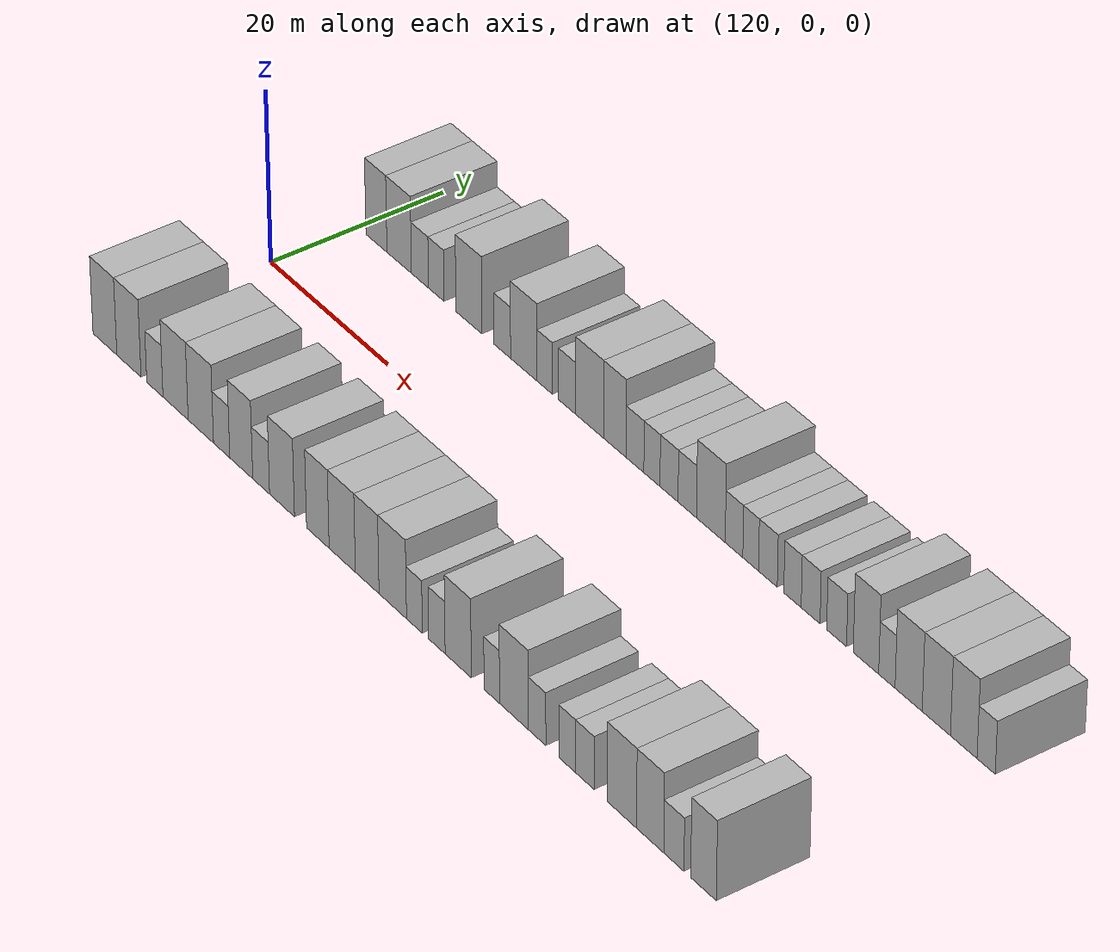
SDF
<sdf version="1.6">
 <world name="default">
  <model name="building_28">
   <static>1</static>
   <pose>123.1927 15.0000 0 0.000000 0.000000 1.570796</pose>
   <link name="link">
    <pose>0 0 4.50 0 0 0</pose>
    <collision name="collision"><geometry><box><size>10.0000 3.6054 9.0000</size></box></geometry></collision>
    <visual name="visual">
     <cast_shadows>0</cast_shadows>
     <geometry><box><size>10.0000 3.6054 9.0000</size></box></geometry>
     <material>
      <script>
       <uri>model://HANNAS_wall/materials/scripts</uri>
       <uri>model://HANNAS_wall/materials/textures</uri>
       <name>vrc/HANNAS_wall</name>
      </script>
     </material>
    </visual>
   </link>
  </model>
  <model name="building_29">
   <static>1</static>
   <pose>127.0830 15.0000 0 0.000000 0.000000 1.570796</pose>
   <link name="link">
    <pose>0 0 4.50 0 0 0</pose>
    <collision name="collision"><geometry><box><size>10.0000 4.1753 9.0000</size></box></geometry></collision>
    <visual name="visual">
     <cast_shadows>0</cast_shadows>
     <geometry><box><size>10.0000 4.1753 9.0000</size></box></geometry>
     <material>
      <script>
       <uri>model://HANNAS_wall/materials/scripts</uri>
       <uri>model://HANNAS_wall/materials/textures</uri>
       <name>vrc/HANNAS_wall</name>
      </script>
     </material>
    </visual>
   </link>
  </model>
  <model name="building_30">
   <static>1</static>
   <pose>130.6172 15.0000 0 0.000000 0.000000 1.570796</pose>
   <link name="link">
    <pose>0 0 3.00 0 0 0</pose>
    <collision name="collision"><geometry><box><size>10.0000 2.8932 6.0000</size></box></geometry></collision>
    <visual name="visual">
     <cast_shadows>0</cast_shadows>
     <geometry><box><size>10.0000 2.8932 6.0000</size></box></geometry>
     <material>
      <script>
       <uri>model://HANNAS_wall/materials/scripts</uri>
       <uri>model://HANNAS_wall/materials/textures</uri>
       <name>vrc/HANNAS_wall</name>
      </script>
     </material>
    </visual>
   </link>
  </model>
  <model name="building_31">
   <static>1</static>
   <pose>133.3781 15.0000 0 0.000000 0.000000 1.570796</pose>
   <link name="link">
    <pose>0 0 3.00 0 0 0</pose>
    <collision name="collision"><geometry><box><size>10.0000 2.6285 6.0000</size></box></geometry></collision>
    <visual name="visual">
     <cast_shadows>0</cast_shadows>
     <geometry><box><size>10.0000 2.6285 6.0000</size></box></geometry>
     <material>
      <script>
       <uri>model://HANNAS_wall/materials/scripts</uri>
       <uri>model://HANNAS_wall/materials/textures</uri>
       <name>vrc/HANNAS_wall</name>
      </script>
     </material>
    </visual>
   </link>
  </model>
  <model name="building_32">
   <static>1</static>
   <pose>138.8617 15.0000 0 0.000000 0.000000 1.570796</pose>
   <link name="link">
    <pose>0 0 4.50 0 0 0</pose>
    <collision name="collision"><geometry><box><size>10.0000 4.3386 9.0000</size></box></geometry></collision>
    <visual name="visual">
     <cast_shadows>0</cast_shadows>
     <geometry><box><size>10.0000 4.3386 9.0000</size></box></geometry>
     <material>
      <script>
       <uri>model://HANNAS_wall/materials/scripts</uri>
       <uri>model://HANNAS_wall/materials/textures</uri>
       <name>vrc/HANNAS_wall</name>
      </script>
     </material>
    </visual>
   </link>
  </model>
  <model name="building_33">
   <static>1</static>
   <pose>144.4029 15.0000 0 0.000000 0.000000 1.570796</pose>
   <link name="link">
    <pose>0 0 3.00 0 0 0</pose>
    <collision name="collision"><geometry><box><size>10.0000 2.7437 6.0000</size></box></geometry></collision>
    <visual name="visual">
     <cast_shadows>0</cast_shadows>
     <geometry><box><size>10.0000 2.7437 6.0000</size></box></geometry>
     <material>
      <script>
       <uri>model://HANNAS_wall/materials/scripts</uri>
       <uri>model://HANNAS_wall/materials/textures</uri>
       <name>vrc/HANNAS_wall</name>
      </script>
     </material>
    </visual>
   </link>
  </model>
  <model name="building_34">
   <static>1</static>
   <pose>147.9562 15.0000 0 0.000000 0.000000 1.570796</pose>
   <link name="link">
    <pose>0 0 4.50 0 0 0</pose>
    <collision name="collision"><geometry><box><size>10.0000 4.3629 9.0000</size></box></geometry></collision>
    <visual name="visual">
     <cast_shadows>0</cast_shadows>
     <geometry><box><size>10.0000 4.3629 9.0000</size></box></geometry>
     <material>
      <script>
       <uri>model://HANNAS_wall/materials/scripts</uri>
       <uri>model://HANNAS_wall/materials/textures</uri>
       <name>vrc/HANNAS_wall</name>
      </script>
     </material>
    </visual>
   </link>
  </model>
  <model name="building_35">
   <static>1</static>
   <pose>151.3836 15.0000 0 0.000000 0.000000 1.570796</pose>
   <link name="link">
    <pose>0 0 3.00 0 0 0</pose>
    <collision name="collision"><geometry><box><size>10.0000 2.4920 6.0000</size></box></geometry></collision>
    <visual name="visual">
     <cast_shadows>0</cast_shadows>
     <geometry><box><size>10.0000 2.4920 6.0000</size></box></geometry>
     <material>
      <script>
       <uri>model://HANNAS_wall/materials/scripts</uri>
       <uri>model://HANNAS_wall/materials/textures</uri>
       <name>vrc/HANNAS_wall</name>
      </script>
     </material>
    </visual>
   </link>
  </model>
  <model name="building_36">
   <static>1</static>
   <pose>155.0240 15.0000 0 0.000000 0.000000 1.570796</pose>
   <link name="link">
    <pose>0 0 3.00 0 0 0</pose>
    <collision name="collision"><geometry><box><size>10.0000 2.7888 6.0000</size></box></geometry></collision>
    <visual name="visual">
     <cast_shadows>0</cast_shadows>
     <geometry><box><size>10.0000 2.7888 6.0000</size></box></geometry>
     <material>
      <script>
       <uri>model://HANNAS_wall/materials/scripts</uri>
       <uri>model://HANNAS_wall/materials/textures</uri>
       <name>vrc/HANNAS_wall</name>
      </script>
     </material>
    </visual>
   </link>
  </model>
  <model name="building_37">
   <static>1</static>
   <pose>158.6517 15.0000 0 0.000000 0.000000 1.570796</pose>
   <link name="link">
    <pose>0 0 4.50 0 0 0</pose>
    <collision name="collision"><geometry><box><size>10.0000 4.4665 9.0000</size></box></geometry></collision>
    <visual name="visual">
     <cast_shadows>0</cast_shadows>
     <geometry><box><size>10.0000 4.4665 9.0000</size></box></geometry>
     <material>
      <script>
       <uri>model://HANNAS_wall/materials/scripts</uri>
       <uri>model://HANNAS_wall/materials/textures</uri>
       <name>vrc/HANNAS_wall</name>
      </script>
     </material>
    </visual>
   </link>
  </model>
  <model name="building_38">
   <static>1</static>
   <pose>162.6968 15.0000 0 0.000000 0.000000 1.570796</pose>
   <link name="link">
    <pose>0 0 4.50 0 0 0</pose>
    <collision name="collision"><geometry><box><size>10.0000 3.6238 9.0000</size></box></geometry></collision>
    <visual name="visual">
     <cast_shadows>0</cast_shadows>
     <geometry><box><size>10.0000 3.6238 9.0000</size></box></geometry>
     <material>
      <script>
       <uri>model://HANNAS_wall/materials/scripts</uri>
       <uri>model://HANNAS_wall/materials/textures</uri>
       <name>vrc/HANNAS_wall</name>
      </script>
     </material>
    </visual>
   </link>
  </model>
  <model name="building_39">
   <static>1</static>
   <pose>165.9192 15.0000 0 0.000000 0.000000 1.570796</pose>
   <link name="link">
    <pose>0 0 3.00 0 0 0</pose>
    <collision name="collision"><geometry><box><size>10.0000 2.8211 6.0000</size></box></geometry></collision>
    <visual name="visual">
     <cast_shadows>0</cast_shadows>
     <geometry><box><size>10.0000 2.8211 6.0000</size></box></geometry>
     <material>
      <script>
       <uri>model://HANNAS_wall/materials/scripts</uri>
       <uri>model://HANNAS_wall/materials/textures</uri>
       <name>vrc/HANNAS_wall</name>
      </script>
     </material>
    </visual>
   </link>
  </model>
  <model name="building_40">
   <static>1</static>
   <pose>168.6110 15.0000 0 0.000000 0.000000 1.570796</pose>
   <link name="link">
    <pose>0 0 3.00 0 0 0</pose>
    <collision name="collision"><geometry><box><size>10.0000 2.5624 6.0000</size></box></geometry></collision>
    <visual name="visual">
     <cast_shadows>0</cast_shadows>
     <geometry><box><size>10.0000 2.5624 6.0000</size></box></geometry>
     <material>
      <script>
       <uri>model://HANNAS_wall/materials/scripts</uri>
       <uri>model://HANNAS_wall/materials/textures</uri>
       <name>vrc/HANNAS_wall</name>
      </script>
     </material>
    </visual>
   </link>
  </model>
  <model name="building_41">
   <static>1</static>
   <pose>171.3134 15.0000 0 0.000000 0.000000 1.570796</pose>
   <link name="link">
    <pose>0 0 3.00 0 0 0</pose>
    <collision name="collision"><geometry><box><size>10.0000 2.8425 6.0000</size></box></geometry></collision>
    <visual name="visual">
     <cast_shadows>0</cast_shadows>
     <geometry><box><size>10.0000 2.8425 6.0000</size></box></geometry>
     <material>
      <script>
       <uri>model://HANNAS_wall/materials/scripts</uri>
       <uri>model://HANNAS_wall/materials/textures</uri>
       <name>vrc/HANNAS_wall</name>
      </script>
     </material>
    </visual>
   </link>
  </model>
  <model name="building_42">
   <static>1</static>
   <pose>174.1806 15.0000 0 0.000000 0.000000 1.570796</pose>
   <link name="link">
    <pose>0 0 3.00 0 0 0</pose>
    <collision name="collision"><geometry><box><size>10.0000 2.8918 6.0000</size></box></geometry></collision>
    <visual name="visual">
     <cast_shadows>0</cast_shadows>
     <geometry><box><size>10.0000 2.8918 6.0000</size></box></geometry>
     <material>
      <script>
       <uri>model://HANNAS_wall/materials/scripts</uri>
       <uri>model://HANNAS_wall/materials/textures</uri>
       <name>vrc/HANNAS_wall</name>
      </script>
     </material>
    </visual>
   </link>
  </model>
  <model name="building_43">
   <static>1</static>
   <pose>177.8587 15.0000 0 0.000000 0.000000 1.570796</pose>
   <link name="link">
    <pose>0 0 4.50 0 0 0</pose>
    <collision name="collision"><geometry><box><size>10.0000 4.4644 9.0000</size></box></geometry></collision>
    <visual name="visual">
     <cast_shadows>0</cast_shadows>
     <geometry><box><size>10.0000 4.4644 9.0000</size></box></geometry>
     <material>
      <script>
       <uri>model://HANNAS_wall/materials/scripts</uri>
       <uri>model://HANNAS_wall/materials/textures</uri>
       <name>vrc/HANNAS_wall</name>
      </script>
     </material>
    </visual>
   </link>
  </model>
  <model name="building_44">
   <static>1</static>
   <pose>181.4485 15.0000 0 0.000000 0.000000 1.570796</pose>
   <link name="link">
    <pose>0 0 3.00 0 0 0</pose>
    <collision name="collision"><geometry><box><size>10.0000 2.7152 6.0000</size></box></geometry></collision>
    <visual name="visual">
     <cast_shadows>0</cast_shadows>
     <geometry><box><size>10.0000 2.7152 6.0000</size></box></geometry>
     <material>
      <script>
       <uri>model://HANNAS_wall/materials/scripts</uri>
       <uri>model://HANNAS_wall/materials/textures</uri>
       <name>vrc/HANNAS_wall</name>
      </script>
     </material>
    </visual>
   </link>
  </model>
  <model name="building_45">
   <static>1</static>
   <pose>184.0129 15.0000 0 0.000000 0.000000 1.570796</pose>
   <link name="link">
    <pose>0 0 3.00 0 0 0</pose>
    <collision name="collision"><geometry><box><size>10.0000 2.4135 6.0000</size></box></geometry></collision>
    <visual name="visual">
     <cast_shadows>0</cast_shadows>
     <geometry><box><size>10.0000 2.4135 6.0000</size></box></geometry>
     <material>
      <script>
       <uri>model://HANNAS_wall/materials/scripts</uri>
       <uri>model://HANNAS_wall/materials/textures</uri>
       <name>vrc/HANNAS_wall</name>
      </script>
     </material>
    </visual>
   </link>
  </model>
  <model name="building_46">
   <static>1</static>
   <pose>186.6566 15.0000 0 0.000000 0.000000 1.570796</pose>
   <link name="link">
    <pose>0 0 3.00 0 0 0</pose>
    <collision name="collision"><geometry><box><size>10.0000 2.8739 6.0000</size></box></geometry></collision>
    <visual name="visual">
     <cast_shadows>0</cast_shadows>
     <geometry><box><size>10.0000 2.8739 6.0000</size></box></geometry>
     <material>
      <script>
       <uri>model://HANNAS_wall/materials/scripts</uri>
       <uri>model://HANNAS_wall/materials/textures</uri>
       <name>vrc/HANNAS_wall</name>
      </script>
     </material>
    </visual>
   </link>
  </model>
  <model name="building_47">
   <static>1</static>
   <pose>190.4143 15.0000 0 0.000000 0.000000 1.570796</pose>
   <link name="link">
    <pose>0 0 3.00 0 0 0</pose>
    <collision name="collision"><geometry><box><size>10.0000 2.6414 6.0000</size></box></geometry></collision>
    <visual name="visual">
     <cast_shadows>0</cast_shadows>
     <geometry><box><size>10.0000 2.6414 6.0000</size></box></geometry>
     <material>
      <script>
       <uri>model://HANNAS_wall/materials/scripts</uri>
       <uri>model://HANNAS_wall/materials/textures</uri>
       <name>vrc/HANNAS_wall</name>
      </script>
     </material>
    </visual>
   </link>
  </model>
  <model name="building_48">
   <static>1</static>
   <pose>193.1601 15.0000 0 0.000000 0.000000 1.570796</pose>
   <link name="link">
    <pose>0 0 3.00 0 0 0</pose>
    <collision name="collision"><geometry><box><size>10.0000 2.8502 6.0000</size></box></geometry></collision>
    <visual name="visual">
     <cast_shadows>0</cast_shadows>
     <geometry><box><size>10.0000 2.8502 6.0000</size></box></geometry>
     <material>
      <script>
       <uri>model://HANNAS_wall/materials/scripts</uri>
       <uri>model://HANNAS_wall/materials/textures</uri>
       <name>vrc/HANNAS_wall</name>
      </script>
     </material>
    </visual>
   </link>
  </model>
  <model name="building_49">
   <static>1</static>
   <pose>197.0775 15.0000 0 0.000000 0.000000 1.570796</pose>
   <link name="link">
    <pose>0 0 3.00 0 0 0</pose>
    <collision name="collision"><geometry><box><size>10.0000 2.9847 6.0000</size></box></geometry></collision>
    <visual name="visual">
     <cast_shadows>0</cast_shadows>
     <geometry><box><size>10.0000 2.9847 6.0000</size></box></geometry>
     <material>
      <script>
       <uri>model://HANNAS_wall/materials/scripts</uri>
       <uri>model://HANNAS_wall/materials/textures</uri>
       <name>vrc/HANNAS_wall</name>
      </script>
     </material>
    </visual>
   </link>
  </model>
  <model name="building_50">
   <static>1</static>
   <pose>201.4639 15.0000 0 0.000000 0.000000 1.570796</pose>
   <link name="link">
    <pose>0 0 4.50 0 0 0</pose>
    <collision name="collision"><geometry><box><size>10.0000 3.7880 9.0000</size></box></geometry></collision>
    <visual name="visual">
     <cast_shadows>0</cast_shadows>
     <geometry><box><size>10.0000 3.7880 9.0000</size></box></geometry>
     <material>
      <script>
       <uri>model://HANNAS_wall/materials/scripts</uri>
       <uri>model://HANNAS_wall/materials/textures</uri>
       <name>vrc/HANNAS_wall</name>
      </script>
     </material>
    </visual>
   </link>
  </model>
  <model name="building_51">
   <static>1</static>
   <pose>204.5732 15.0000 0 0.000000 0.000000 1.570796</pose>
   <link name="link">
    <pose>0 0 3.00 0 0 0</pose>
    <collision name="collision"><geometry><box><size>10.0000 2.4307 6.0000</size></box></geometry></collision>
    <visual name="visual">
     <cast_shadows>0</cast_shadows>
     <geometry><box><size>10.0000 2.4307 6.0000</size></box></geometry>
     <material>
      <script>
       <uri>model://HANNAS_wall/materials/scripts</uri>
       <uri>model://HANNAS_wall/materials/textures</uri>
       <name>vrc/HANNAS_wall</name>
      </script>
     </material>
    </visual>
   </link>
  </model>
  <model name="building_52">
   <static>1</static>
   <pose>207.7834 15.0000 0 0.000000 0.000000 1.570796</pose>
   <link name="link">
    <pose>0 0 4.50 0 0 0</pose>
    <collision name="collision"><geometry><box><size>10.0000 3.9896 9.0000</size></box></geometry></collision>
    <visual name="visual">
     <cast_shadows>0</cast_shadows>
     <geometry><box><size>10.0000 3.9896 9.0000</size></box></geometry>
     <material>
      <script>
       <uri>model://HANNAS_wall/materials/scripts</uri>
       <uri>model://HANNAS_wall/materials/textures</uri>
       <name>vrc/HANNAS_wall</name>
      </script>
     </material>
    </visual>
   </link>
  </model>
  <model name="building_53">
   <static>1</static>
   <pose>211.8404 15.0000 0 0.000000 0.000000 1.570796</pose>
   <link name="link">
    <pose>0 0 4.50 0 0 0</pose>
    <collision name="collision"><geometry><box><size>10.0000 4.1246 9.0000</size></box></geometry></collision>
    <visual name="visual">
     <cast_shadows>0</cast_shadows>
     <geometry><box><size>10.0000 4.1246 9.0000</size></box></geometry>
     <material>
      <script>
       <uri>model://HANNAS_wall/materials/scripts</uri>
       <uri>model://HANNAS_wall/materials/textures</uri>
       <name>vrc/HANNAS_wall</name>
      </script>
     </material>
    </visual>
   </link>
  </model>
  <model name="building_54">
   <static>1</static>
   <pose>215.8336 15.0000 0 0.000000 0.000000 1.570796</pose>
   <link name="link">
    <pose>0 0 4.50 0 0 0</pose>
    <collision name="collision"><geometry><box><size>10.0000 3.8618 9.0000</size></box></geometry></collision>
    <visual name="visual">
     <cast_shadows>0</cast_shadows>
     <geometry><box><size>10.0000 3.8618 9.0000</size></box></geometry>
     <material>
      <script>
       <uri>model://HANNAS_wall/materials/scripts</uri>
       <uri>model://HANNAS_wall/materials/textures</uri>
       <name>vrc/HANNAS_wall</name>
      </script>
     </material>
    </visual>
   </link>
  </model>
  <model name="building_55">
   <static>1</static>
   <pose>219.0743 15.0000 0 0.000000 0.000000 1.570796</pose>
   <link name="link">
    <pose>0 0 3.00 0 0 0</pose>
    <collision name="collision"><geometry><box><size>10.0000 2.6194 6.0000</size></box></geometry></collision>
    <visual name="visual">
     <cast_shadows>0</cast_shadows>
     <geometry><box><size>10.0000 2.6194 6.0000</size></box></geometry>
     <material>
      <script>
       <uri>model://HANNAS_wall/materials/scripts</uri>
       <uri>model://HANNAS_wall/materials/textures</uri>
       <name>vrc/HANNAS_wall</name>
      </script>
     </material>
    </visual>
   </link>
  </model>
  <model name="building_81">
   <static>1</static>
   <pose>121.9520 -15.0000 0 0.000000 0.000000 1.570796</pose>
   <link name="link">
    <pose>0 0 4.50 0 0 0</pose>
    <collision name="collision"><geometry><box><size>10.0000 4.1929 9.0000</size></box></geometry></collision>
    <visual name="visual">
     <cast_shadows>0</cast_shadows>
     <geometry><box><size>10.0000 4.1929 9.0000</size></box></geometry>
     <material>
      <script>
       <uri>model://HANNAS_wall/materials/scripts</uri>
       <uri>model://HANNAS_wall/materials/textures</uri>
       <name>vrc/HANNAS_wall</name>
      </script>
     </material>
    </visual>
   </link>
  </model>
  <model name="building_82">
   <static>1</static>
   <pose>126.1588 -15.0000 0 0.000000 0.000000 1.570796</pose>
   <link name="link">
    <pose>0 0 4.50 0 0 0</pose>
    <collision name="collision"><geometry><box><size>10.0000 4.2206 9.0000</size></box></geometry></collision>
    <visual name="visual">
     <cast_shadows>0</cast_shadows>
     <geometry><box><size>10.0000 4.2206 9.0000</size></box></geometry>
     <material>
      <script>
       <uri>model://HANNAS_wall/materials/scripts</uri>
       <uri>model://HANNAS_wall/materials/textures</uri>
       <name>vrc/HANNAS_wall</name>
      </script>
     </material>
    </visual>
   </link>
  </model>
  <model name="building_83">
   <static>1</static>
   <pose>130.6727 -15.0000 0 0.000000 0.000000 1.570796</pose>
   <link name="link">
    <pose>0 0 3.00 0 0 0</pose>
    <collision name="collision"><geometry><box><size>10.0000 2.8071 6.0000</size></box></geometry></collision>
    <visual name="visual">
     <cast_shadows>0</cast_shadows>
     <geometry><box><size>10.0000 2.8071 6.0000</size></box></geometry>
     <material>
      <script>
       <uri>model://HANNAS_wall/materials/scripts</uri>
       <uri>model://HANNAS_wall/materials/textures</uri>
       <name>vrc/HANNAS_wall</name>
      </script>
     </material>
    </visual>
   </link>
  </model>
  <model name="building_84">
   <static>1</static>
   <pose>134.2436 -15.0000 0 0.000000 0.000000 1.570796</pose>
   <link name="link">
    <pose>0 0 4.50 0 0 0</pose>
    <collision name="collision"><geometry><box><size>10.0000 4.3347 9.0000</size></box></geometry></collision>
    <visual name="visual">
     <cast_shadows>0</cast_shadows>
     <geometry><box><size>10.0000 4.3347 9.0000</size></box></geometry>
     <material>
      <script>
       <uri>model://HANNAS_wall/materials/scripts</uri>
       <uri>model://HANNAS_wall/materials/textures</uri>
       <name>vrc/HANNAS_wall</name>
      </script>
     </material>
    </visual>
   </link>
  </model>
  <model name="building_85">
   <static>1</static>
   <pose>138.5756 -15.0000 0 0.000000 0.000000 1.570796</pose>
   <link name="link">
    <pose>0 0 4.50 0 0 0</pose>
    <collision name="collision"><geometry><box><size>10.0000 4.3294 9.0000</size></box></geometry></collision>
    <visual name="visual">
     <cast_shadows>0</cast_shadows>
     <geometry><box><size>10.0000 4.3294 9.0000</size></box></geometry>
     <material>
      <script>
       <uri>model://HANNAS_wall/materials/scripts</uri>
       <uri>model://HANNAS_wall/materials/textures</uri>
       <name>vrc/HANNAS_wall</name>
      </script>
     </material>
    </visual>
   </link>
  </model>
  <model name="building_86">
   <static>1</static>
   <pose>142.1197 -15.0000 0 0.000000 0.000000 1.570796</pose>
   <link name="link">
    <pose>0 0 3.00 0 0 0</pose>
    <collision name="collision"><geometry><box><size>10.0000 2.7588 6.0000</size></box></geometry></collision>
    <visual name="visual">
     <cast_shadows>0</cast_shadows>
     <geometry><box><size>10.0000 2.7588 6.0000</size></box></geometry>
     <material>
      <script>
       <uri>model://HANNAS_wall/materials/scripts</uri>
       <uri>model://HANNAS_wall/materials/textures</uri>
       <name>vrc/HANNAS_wall</name>
      </script>
     </material>
    </visual>
   </link>
  </model>
  <model name="building_87">
   <static>1</static>
   <pose>145.4338 -15.0000 0 0.000000 0.000000 1.570796</pose>
   <link name="link">
    <pose>0 0 4.50 0 0 0</pose>
    <collision name="collision"><geometry><box><size>10.0000 3.8695 9.0000</size></box></geometry></collision>
    <visual name="visual">
     <cast_shadows>0</cast_shadows>
     <geometry><box><size>10.0000 3.8695 9.0000</size></box></geometry>
     <material>
      <script>
       <uri>model://HANNAS_wall/materials/scripts</uri>
       <uri>model://HANNAS_wall/materials/textures</uri>
       <name>vrc/HANNAS_wall</name>
      </script>
     </material>
    </visual>
   </link>
  </model>
  <model name="building_88">
   <static>1</static>
   <pose>148.7754 -15.0000 0 0.000000 0.000000 1.570796</pose>
   <link name="link">
    <pose>0 0 3.00 0 0 0</pose>
    <collision name="collision"><geometry><box><size>10.0000 2.8136 6.0000</size></box></geometry></collision>
    <visual name="visual">
     <cast_shadows>0</cast_shadows>
     <geometry><box><size>10.0000 2.8136 6.0000</size></box></geometry>
     <material>
      <script>
       <uri>model://HANNAS_wall/materials/scripts</uri>
       <uri>model://HANNAS_wall/materials/textures</uri>
       <name>vrc/HANNAS_wall</name>
      </script>
     </material>
    </visual>
   </link>
  </model>
  <model name="building_89">
   <static>1</static>
   <pose>152.2585 -15.0000 0 0.000000 0.000000 1.570796</pose>
   <link name="link">
    <pose>0 0 4.50 0 0 0</pose>
    <collision name="collision"><geometry><box><size>10.0000 4.1527 9.0000</size></box></geometry></collision>
    <visual name="visual">
     <cast_shadows>0</cast_shadows>
     <geometry><box><size>10.0000 4.1527 9.0000</size></box></geometry>
     <material>
      <script>
       <uri>model://HANNAS_wall/materials/scripts</uri>
       <uri>model://HANNAS_wall/materials/textures</uri>
       <name>vrc/HANNAS_wall</name>
      </script>
     </material>
    </visual>
   </link>
  </model>
  <model name="building_90">
   <static>1</static>
   <pose>158.1918 -15.0000 0 0.000000 0.000000 1.570796</pose>
   <link name="link">
    <pose>0 0 4.50 0 0 0</pose>
    <collision name="collision"><geometry><box><size>10.0000 3.7138 9.0000</size></box></geometry></collision>
    <visual name="visual">
     <cast_shadows>0</cast_shadows>
     <geometry><box><size>10.0000 3.7138 9.0000</size></box></geometry>
     <material>
      <script>
       <uri>model://HANNAS_wall/materials/scripts</uri>
       <uri>model://HANNAS_wall/materials/textures</uri>
       <name>vrc/HANNAS_wall</name>
      </script>
     </material>
    </visual>
   </link>
  </model>
  <model name="building_91">
   <static>1</static>
   <pose>162.1963 -15.0000 0 0.000000 0.000000 1.570796</pose>
   <link name="link">
    <pose>0 0 4.50 0 0 0</pose>
    <collision name="collision"><geometry><box><size>10.0000 4.2953 9.0000</size></box></geometry></collision>
    <visual name="visual">
     <cast_shadows>0</cast_shadows>
     <geometry><box><size>10.0000 4.2953 9.0000</size></box></geometry>
     <material>
      <script>
       <uri>model://HANNAS_wall/materials/scripts</uri>
       <uri>model://HANNAS_wall/materials/textures</uri>
       <name>vrc/HANNAS_wall</name>
      </script>
     </material>
    </visual>
   </link>
  </model>
  <model name="building_92">
   <static>1</static>
   <pose>166.2609 -15.0000 0 0.000000 0.000000 1.570796</pose>
   <link name="link">
    <pose>0 0 4.50 0 0 0</pose>
    <collision name="collision"><geometry><box><size>10.0000 3.8340 9.0000</size></box></geometry></collision>
    <visual name="visual">
     <cast_shadows>0</cast_shadows>
     <geometry><box><size>10.0000 3.8340 9.0000</size></box></geometry>
     <material>
      <script>
       <uri>model://HANNAS_wall/materials/scripts</uri>
       <uri>model://HANNAS_wall/materials/textures</uri>
       <name>vrc/HANNAS_wall</name>
      </script>
     </material>
    </visual>
   </link>
  </model>
  <model name="building_93">
   <static>1</static>
   <pose>170.3941 -15.0000 0 0.000000 0.000000 1.570796</pose>
   <link name="link">
    <pose>0 0 4.50 0 0 0</pose>
    <collision name="collision"><geometry><box><size>10.0000 4.4324 9.0000</size></box></geometry></collision>
    <visual name="visual">
     <cast_shadows>0</cast_shadows>
     <geometry><box><size>10.0000 4.4324 9.0000</size></box></geometry>
     <material>
      <script>
       <uri>model://HANNAS_wall/materials/scripts</uri>
       <uri>model://HANNAS_wall/materials/textures</uri>
       <name>vrc/HANNAS_wall</name>
      </script>
     </material>
    </visual>
   </link>
  </model>
  <model name="building_94">
   <static>1</static>
   <pose>173.8751 -15.0000 0 0.000000 0.000000 1.570796</pose>
   <link name="link">
    <pose>0 0 3.00 0 0 0</pose>
    <collision name="collision"><geometry><box><size>10.0000 2.5297 6.0000</size></box></geometry></collision>
    <visual name="visual">
     <cast_shadows>0</cast_shadows>
     <geometry><box><size>10.0000 2.5297 6.0000</size></box></geometry>
     <material>
      <script>
       <uri>model://HANNAS_wall/materials/scripts</uri>
       <uri>model://HANNAS_wall/materials/textures</uri>
       <name>vrc/HANNAS_wall</name>
      </script>
     </material>
    </visual>
   </link>
  </model>
  <model name="building_95">
   <static>1</static>
   <pose>177.4519 -15.0000 0 0.000000 0.000000 1.570796</pose>
   <link name="link">
    <pose>0 0 3.00 0 0 0</pose>
    <collision name="collision"><geometry><box><size>10.0000 2.6238 6.0000</size></box></geometry></collision>
    <visual name="visual">
     <cast_shadows>0</cast_shadows>
     <geometry><box><size>10.0000 2.6238 6.0000</size></box></geometry>
     <material>
      <script>
       <uri>model://HANNAS_wall/materials/scripts</uri>
       <uri>model://HANNAS_wall/materials/textures</uri>
       <name>vrc/HANNAS_wall</name>
      </script>
     </material>
    </visual>
   </link>
  </model>
  <model name="building_96">
   <static>1</static>
   <pose>180.8328 -15.0000 0 0.000000 0.000000 1.570796</pose>
   <link name="link">
    <pose>0 0 4.50 0 0 0</pose>
    <collision name="collision"><geometry><box><size>10.0000 4.1380 9.0000</size></box></geometry></collision>
    <visual name="visual">
     <cast_shadows>0</cast_shadows>
     <geometry><box><size>10.0000 4.1380 9.0000</size></box></geometry>
     <material>
      <script>
       <uri>model://HANNAS_wall/materials/scripts</uri>
       <uri>model://HANNAS_wall/materials/textures</uri>
       <name>vrc/HANNAS_wall</name>
      </script>
     </material>
    </visual>
   </link>
  </model>
  <model name="building_97">
   <static>1</static>
   <pose>186.1147 -15.0000 0 0.000000 0.000000 1.570796</pose>
   <link name="link">
    <pose>0 0 3.00 0 0 0</pose>
    <collision name="collision"><geometry><box><size>10.0000 2.4257 6.0000</size></box></geometry></collision>
    <visual name="visual">
     <cast_shadows>0</cast_shadows>
     <geometry><box><size>10.0000 2.4257 6.0000</size></box></geometry>
     <material>
      <script>
       <uri>model://HANNAS_wall/materials/scripts</uri>
       <uri>model://HANNAS_wall/materials/textures</uri>
       <name>vrc/HANNAS_wall</name>
      </script>
     </material>
    </visual>
   </link>
  </model>
  <model name="building_98">
   <static>1</static>
   <pose>189.5614 -15.0000 0 0.000000 0.000000 1.570796</pose>
   <link name="link">
    <pose>0 0 4.50 0 0 0</pose>
    <collision name="collision"><geometry><box><size>10.0000 4.4678 9.0000</size></box></geometry></collision>
    <visual name="visual">
     <cast_shadows>0</cast_shadows>
     <geometry><box><size>10.0000 4.4678 9.0000</size></box></geometry>
     <material>
      <script>
       <uri>model://HANNAS_wall/materials/scripts</uri>
       <uri>model://HANNAS_wall/materials/textures</uri>
       <name>vrc/HANNAS_wall</name>
      </script>
     </material>
    </visual>
   </link>
  </model>
  <model name="building_99">
   <static>1</static>
   <pose>193.1411 -15.0000 0 0.000000 0.000000 1.570796</pose>
   <link name="link">
    <pose>0 0 3.00 0 0 0</pose>
    <collision name="collision"><geometry><box><size>10.0000 2.6916 6.0000</size></box></geometry></collision>
    <visual name="visual">
     <cast_shadows>0</cast_shadows>
     <geometry><box><size>10.0000 2.6916 6.0000</size></box></geometry>
     <material>
      <script>
       <uri>model://HANNAS_wall/materials/scripts</uri>
       <uri>model://HANNAS_wall/materials/textures</uri>
       <name>vrc/HANNAS_wall</name>
      </script>
     </material>
    </visual>
   </link>
  </model>
  <model name="building_100">
   <static>1</static>
   <pose>197.7714 -15.0000 0 0.000000 0.000000 1.570796</pose>
   <link name="link">
    <pose>0 0 3.00 0 0 0</pose>
    <collision name="collision"><geometry><box><size>10.0000 2.5690 6.0000</size></box></geometry></collision>
    <visual name="visual">
     <cast_shadows>0</cast_shadows>
     <geometry><box><size>10.0000 2.5690 6.0000</size></box></geometry>
     <material>
      <script>
       <uri>model://HANNAS_wall/materials/scripts</uri>
       <uri>model://HANNAS_wall/materials/textures</uri>
       <name>vrc/HANNAS_wall</name>
      </script>
     </material>
    </visual>
   </link>
  </model>
  <model name="building_101">
   <static>1</static>
   <pose>200.4626 -15.0000 0 0.000000 0.000000 1.570796</pose>
   <link name="link">
    <pose>0 0 3.00 0 0 0</pose>
    <collision name="collision"><geometry><box><size>10.0000 2.8135 6.0000</size></box></geometry></collision>
    <visual name="visual">
     <cast_shadows>0</cast_shadows>
     <geometry><box><size>10.0000 2.8135 6.0000</size></box></geometry>
     <material>
      <script>
       <uri>model://HANNAS_wall/materials/scripts</uri>
       <uri>model://HANNAS_wall/materials/textures</uri>
       <name>vrc/HANNAS_wall</name>
      </script>
     </material>
    </visual>
   </link>
  </model>
  <model name="building_102">
   <static>1</static>
   <pose>206.0687 -15.0000 0 0.000000 0.000000 1.570796</pose>
   <link name="link">
    <pose>0 0 4.50 0 0 0</pose>
    <collision name="collision"><geometry><box><size>10.0000 4.3988 9.0000</size></box></geometry></collision>
    <visual name="visual">
     <cast_shadows>0</cast_shadows>
     <geometry><box><size>10.0000 4.3988 9.0000</size></box></geometry>
     <material>
      <script>
       <uri>model://HANNAS_wall/materials/scripts</uri>
       <uri>model://HANNAS_wall/materials/textures</uri>
       <name>vrc/HANNAS_wall</name>
      </script>
     </material>
    </visual>
   </link>
  </model>
  <model name="building_103">
   <static>1</static>
   <pose>210.2964 -15.0000 0 0.000000 0.000000 1.570796</pose>
   <link name="link">
    <pose>0 0 4.50 0 0 0</pose>
    <collision name="collision"><geometry><box><size>10.0000 4.0566 9.0000</size></box></geometry></collision>
    <visual name="visual">
     <cast_shadows>0</cast_shadows>
     <geometry><box><size>10.0000 4.0566 9.0000</size></box></geometry>
     <material>
      <script>
       <uri>model://HANNAS_wall/materials/scripts</uri>
       <uri>model://HANNAS_wall/materials/textures</uri>
       <name>vrc/HANNAS_wall</name>
      </script>
     </material>
    </visual>
   </link>
  </model>
  <model name="building_104">
   <static>1</static>
   <pose>213.8223 -15.0000 0 0.000000 0.000000 1.570796</pose>
   <link name="link">
    <pose>0 0 3.00 0 0 0</pose>
    <collision name="collision"><geometry><box><size>10.0000 2.9952 6.0000</size></box></geometry></collision>
    <visual name="visual">
     <cast_shadows>0</cast_shadows>
     <geometry><box><size>10.0000 2.9952 6.0000</size></box></geometry>
     <material>
      <script>
       <uri>model://HANNAS_wall/materials/scripts</uri>
       <uri>model://HANNAS_wall/materials/textures</uri>
       <name>vrc/HANNAS_wall</name>
      </script>
     </material>
    </visual>
   </link>
  </model>
  <model name="building_105">
   <static>1</static>
   <pose>218.1977 -15.0000 0 0.000000 0.000000 1.570796</pose>
   <link name="link">
    <pose>0 0 4.50 0 0 0</pose>
    <collision name="collision"><geometry><box><size>10.0000 3.7556 9.0000</size></box></geometry></collision>
    <visual name="visual">
     <cast_shadows>0</cast_shadows>
     <geometry><box><size>10.0000 3.7556 9.0000</size></box></geometry>
     <material>
      <script>
       <uri>model://HANNAS_wall/materials/scripts</uri>
       <uri>model://HANNAS_wall/materials/textures</uri>
       <name>vrc/HANNAS_wall</name>
      </script>
     </material>
    </visual>
   </link>
  </model>
 </world>
</sdf>
